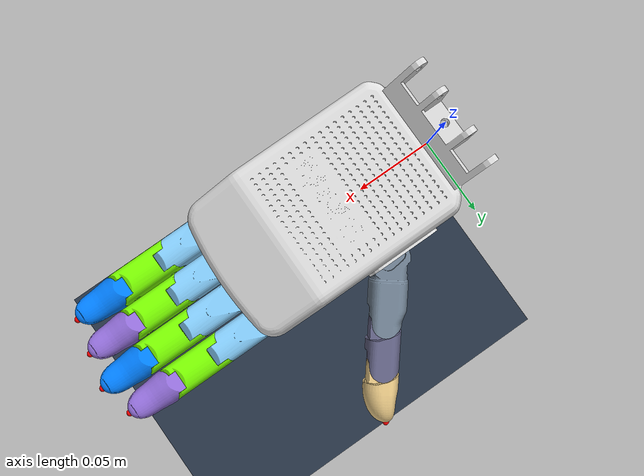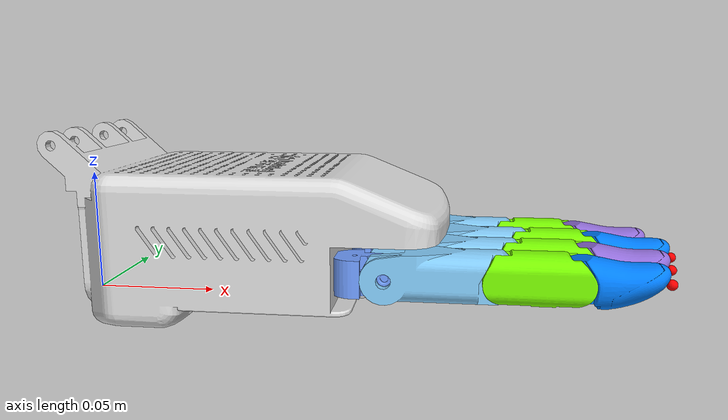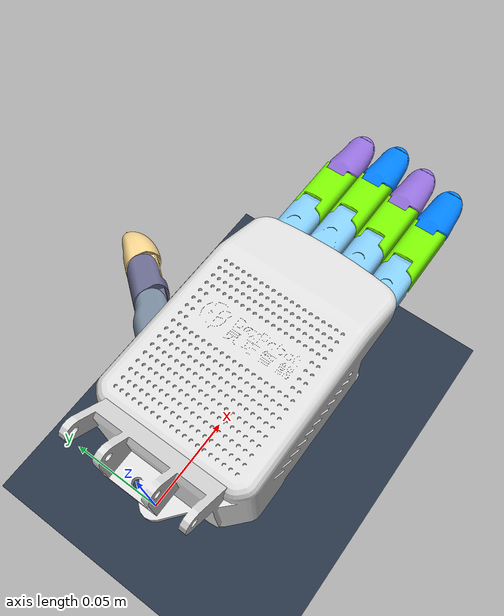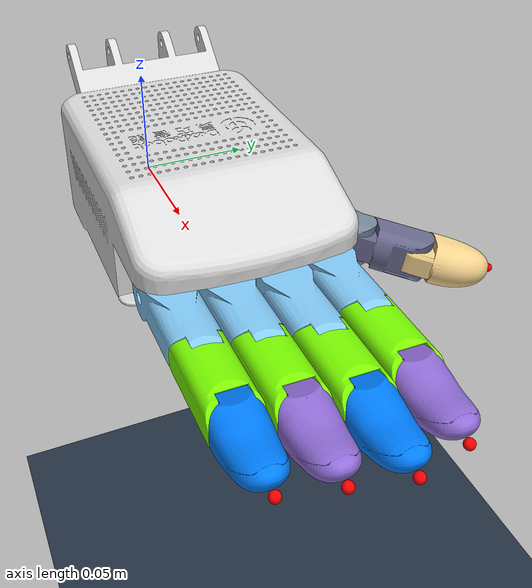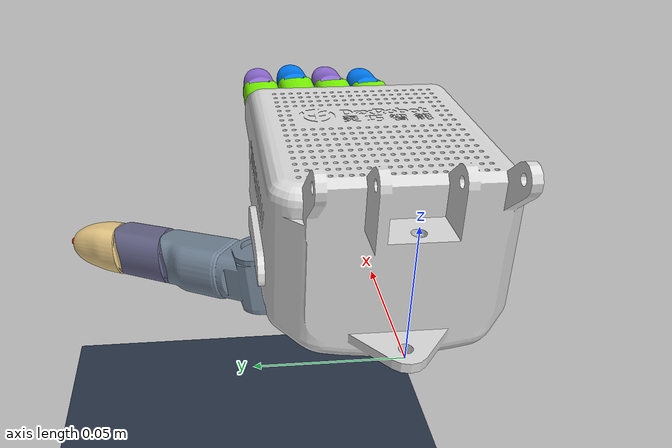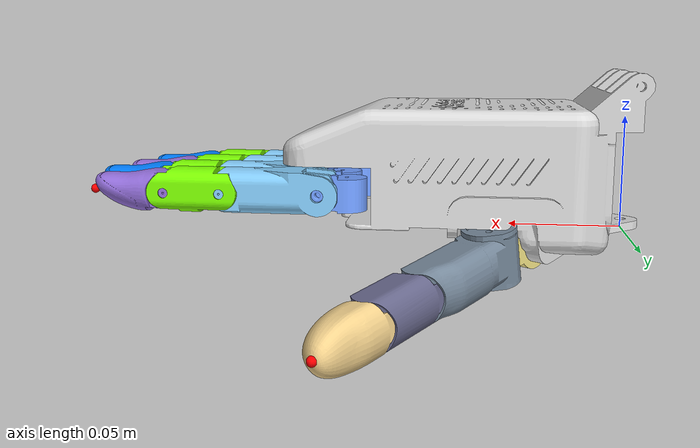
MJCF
<mujoco model="marvin_021pro_right_hand_floating_vis">
  <include file="marvin_021pro_right_hand_floating_simplified.xml"/>

  <statistic center="0 0 0.08" extent="0.6"/>

  <visual>
    <headlight diffuse="0.7 0.7 0.7" ambient="0.35 0.35 0.35" specular="0.15 0.15 0.15"/>
    <global azimuth="140" elevation="-22"/>
    <rgba haze="0.15 0.2 0.28 1"/>
  </visual>

  <asset>
    <texture name="grid" type="2d" builtin="checker" rgb1="0.18 0.24 0.32" rgb2="0.12 0.16 0.22" width="512" height="512"/>
    <material name="grid_mat" texture="grid" texrepeat="8 8" reflectance="0.15" rgba="1 1 1 1"/>
  </asset>

  <worldbody>
    <light name="key_light" pos="1.2 -1.2 1.6" dir="-0.5 0.5 -1" directional="true" diffuse="0.9 0.9 0.9" specular="0.2 0.2 0.2"/>
    <light name="fill_light" pos="-1.0 1.0 1.1" dir="0.4 -0.4 -1" directional="true" diffuse="0.35 0.35 0.4" specular="0.05 0.05 0.05"/>
    <geom name="floor" type="plane" size="2 2 0.1" pos="0 0 -0.22" material="grid_mat" condim="3"/>

    <camera name="overview" pos="0.42 -0.42 0.26" xyaxes="0.707 0.707 0 -0.331 0.331 0.883"/>
    <camera name="side" pos="0.04 -0.62 0.12" xyaxes="1 0 0 0 0.3 0.954"/>
    <camera name="top" pos="0 0 0.72" xyaxes="1 0 0 0 1 0"/>
  </worldbody>

  <keyframe>
    <key
      name="home"
      qpos="0 0 0 0 0 0 0 0 0 0 0 0 0 0 0 0 0 0 0 0 0 0 0 0 0 0"/>
  </keyframe>
</mujoco>

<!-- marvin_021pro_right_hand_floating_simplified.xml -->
<mujoco model="marvin_021pro_right_hand_floating">
  <size njmax="300" nconmax="300" />
  <compiler inertiafromgeom="auto" angle="radian" meshdir="../marvin_021pro_urdf/meshes/" autolimits="true" balanceinertia="true" />
  <option gravity="0 0 -9.81" iterations="100" solver="Newton" integrator="implicit" timestep="0.001" />
  <default>
    <geom friction="3 2 2" solref="0.01 0.9" solimp="0.9 0.999 0.005" />
  </default>
  <visual>
    <headlight diffuse="0.5 0.5 0.5" ambient="0.3 0.3 0.3" specular="0.1 0.1 0.1" />
  </visual>
  <asset>
    <mesh name="RFH1" file="RFH1.STL" />
    <mesh name="RH0_0" file="RH0_0.STL" />
    <mesh name="RH0_1" file="RH0_1.STL" />
    <mesh name="RH0_2" file="RH0_2.STL" />
    <mesh name="RH0_3" file="RH0_3.STL" />
    <mesh name="RH1_0" file="RH1_0.STL" />
    <mesh name="RH1_1" file="RH1_1.STL" />
    <mesh name="RH1_2" file="RH1_2.STL" />
    <mesh name="RH1_3" file="RH1_3.STL" />
    <mesh name="RH2_0" file="RH2_0.STL" />
    <mesh name="RH2_1" file="RH2_1.STL" />
    <mesh name="RH2_2" file="RH2_2.STL" />
    <mesh name="RH2_3" file="RH2_3.STL" />
    <mesh name="RH3_0" file="RH3_0.STL" />
    <mesh name="RH3_1" file="RH3_1.STL" />
    <mesh name="RH3_2" file="RH3_2.STL" />
    <mesh name="RH3_3" file="RH3_3.STL" />
    <mesh name="RH4_0" file="RH4_0.STL" />
    <mesh name="RH4_1" file="RH4_1.STL" />
    <mesh name="RH4_2" file="RH4_2.STL" />
    <mesh name="RH4_3" file="RH4_3.STL" />
    <mesh name="RFH1_collision" file="../meshes_simplified/RFH1.STL" />
    <mesh name="RH0_0_collision" file="../meshes_simplified/RH0_0.STL" />
    <mesh name="RH0_1_collision" file="../meshes_simplified/RH0_1.STL" />
    <mesh name="RH0_2_collision" file="../meshes_simplified/RH0_2.STL" />
    <mesh name="RH0_3_collision" file="../meshes_simplified/RH0_3.STL" />
    <mesh name="RH1_0_collision" file="../meshes_simplified/RH1_0.STL" />
    <mesh name="RH1_1_collision" file="../meshes_simplified/RH1_1.STL" />
    <mesh name="RH1_2_collision" file="../meshes_simplified/RH1_2.STL" />
    <mesh name="RH1_3_collision" file="../meshes_simplified/RH1_3.STL" />
    <mesh name="RH2_0_collision" file="../meshes_simplified/RH2_0.STL" />
    <mesh name="RH2_1_collision" file="../meshes_simplified/RH2_1.STL" />
    <mesh name="RH2_2_collision" file="../meshes_simplified/RH2_2.STL" />
    <mesh name="RH2_3_collision" file="../meshes_simplified/RH2_3.STL" />
    <mesh name="RH3_0_collision" file="../meshes_simplified/RH3_0.STL" />
    <mesh name="RH3_1_collision" file="../meshes_simplified/RH3_1.STL" />
    <mesh name="RH3_2_collision" file="../meshes_simplified/RH3_2.STL" />
    <mesh name="RH3_3_collision" file="../meshes_simplified/RH3_3.STL" />
    <mesh name="RH4_0_collision" file="../meshes_simplified/RH4_0.STL" />
    <mesh name="RH4_1_collision" file="../meshes_simplified/RH4_1.STL" />
    <mesh name="RH4_2_collision" file="../meshes_simplified/RH4_2.STL" />
    <mesh name="RH4_3_collision" file="../meshes_simplified/RH4_3.STL" />
  </asset>
  <worldbody>
    <body name="floating_base_link">
      <inertial pos="0 0 0" mass="0.01" fullinertia="0.01 0.01 0.01 0 0 0" />
      <body name="floating_stage_1" pos="0 0 0">
        <inertial pos="0 0 0" mass="0.001" fullinertia="0.001 0.001 0.001 0 0 0" />
        <joint name="ARTx" type="slide" axis="1 0 0" limited="true" range="-1.0 1.0" damping="20" armature="0.01" frictionloss="0.1" />
        <body name="floating_stage_2" pos="0 0 0">
          <inertial pos="0 0 0" mass="0.001" fullinertia="0.001 0.001 0.001 0 0 0" />
          <joint name="ARTy" type="slide" axis="0 1 0" limited="true" range="-1.0 1.0" damping="20" armature="0.01" frictionloss="0.1" />
          <body name="floating_stage_3" pos="0 0 0">
            <inertial pos="0 0 0" mass="0.001" fullinertia="0.001 0.001 0.001 0 0 0" />
            <joint name="ARTz" type="slide" axis="0 0 1" limited="true" range="-1.0 1.0" damping="20" armature="0.01" frictionloss="0.1" />
            <body name="floating_stage_4" pos="0 0 0">
              <inertial pos="0 0 0" mass="0.001" fullinertia="0.001 0.001 0.001 0 0 0" />
              <joint name="ARRx" type="hinge" axis="1 0 0" limited="true" range="-6.283185307179586 6.283185307179586" damping="20" armature="0.01" frictionloss="0.1" />
              <body name="floating_stage_5" pos="0 0 0">
                <inertial pos="0 0 0" mass="0.001" fullinertia="0.001 0.001 0.001 0 0 0" />
                <joint name="ARRy" type="hinge" axis="0 1 0" limited="true" range="-6.283185307179586 6.283185307179586" damping="20" armature="0.01" frictionloss="0.1" />
                <body name="right_hand_base" pos="0 0 0">
                  <joint name="ARRz" type="hinge" axis="0 0 1" limited="true" range="-6.283185307179586 6.283185307179586" damping="20" armature="0.01" frictionloss="0.1" />
                  <body name="RFH1" pos="0 0 0" quat="0.7071067811865476 0.0 0.7071067811865475 0.0">
                    <inertial pos="-0.0281358 0.00116684 0.0629761" quat="0.997889 0.000664538 -0.0648663 -0.00322019" mass="0.552446" diaginertia="0.000987241 0.000800455 0.000447942" />
                    <geom type="mesh" density="0" rgba="0.858824 0.858824 0.858824 1" mesh="RFH1_collision" contype="1" conaffinity="1" group="3" />
                    <geom type="mesh" rgba="0.858824 0.858824 0.858824 1" mesh="RFH1" contype="0" conaffinity="0" group="1" density="0" />
                    <body name="RH0_0" pos="0.001 0.0173446 0.0609471" quat="0.669581 0.227292 0.669581 0.227292">
                      <inertial pos="0.0166 0.00521328 0.000919242" quat="0.454519 0.541675 -0.541675 0.454519" mass="0.0505243" diaginertia="1.30842e-06 1.2533e-06 5.88299e-07" />
                      <joint name="r_f_jiont_1_1" pos="0 0 0" axis="1 0 0" range="0 2" type="hinge" limited="true" damping="1" />
                      <geom type="mesh" density="0" rgba="0.929412 0.866667 0.509804 1" mesh="RH0_0_collision" contype="1" conaffinity="1" group="3" />
                      <geom type="mesh" rgba="0.929412 0.866667 0.509804 1" mesh="RH0_0" contype="0" conaffinity="0" group="1" density="0" />
                      <body name="RH0_1" pos="0.0166 0.0160248 0.0127768" quat="0.646164 0.28718 0.686215 -0.170612">
                        <inertial pos="0.00979983 0.0148825 -0.0104531" quat="0.894642 0.446781 -0.000693364 0.00140788" mass="0.0246804" diaginertia="7.69892e-06 7.69009e-06 1.75846e-06" />
                        <joint name="r_f_jiont_1_2" pos="0 0 0" axis="-1 0 0" range="0 1.57" type="hinge" limited="true" damping="1" />
                        <geom type="mesh" density="0" rgba="0.458824 0.529412 0.6 1" mesh="RH0_1_collision" contype="1" conaffinity="1" group="3" />
                        <geom type="mesh" rgba="0.458824 0.529412 0.6 1" mesh="RH0_1" contype="0" conaffinity="0" group="1" density="0" />
                        <body name="RH0_2" pos="0.0038 0.0339193 -0.0264287">
                          <inertial pos="0.00600001 0.011904 -0.00882206" quat="0.634542 0.312107 -0.312073 0.634473" mass="0.0122868" diaginertia="1.81253e-06 1.78096e-06 6.66259e-07" />
                          <joint name="r_f_jiont_1_3" pos="0 0 0" axis="-1 0 0" range="0 1.57" type="hinge" limited="true" damping="1" />
                          <geom type="mesh" density="0" rgba="0.407843 0.407843 0.54902 1" mesh="RH0_2_collision" contype="1" conaffinity="1" group="3" />
                          <geom type="mesh" rgba="0.407843 0.407843 0.54902 1" mesh="RH0_2" contype="0" conaffinity="0" group="1" density="0" />
                          <body name="RH0_3" pos="0 0.021456 -0.0167177" quat="0 0 -1 0">
                            <inertial pos="-0.00601695 0.0109867 0.00765051" quat="0.463072 0.886283 0.00763868 -0.00293413" mass="0.0110115" diaginertia="1.47866e-06 1.44967e-06 5.32426e-07" />
                            <joint name="r_f_jiont_1_4" pos="0 0 0" axis="1 0 0" range="0 1.57" type="hinge" limited="true" damping="1" />
                            <geom type="mesh" density="0" rgba="0.94902 0.819608 0.54902 1" mesh="RH0_3_collision" contype="1" conaffinity="1" group="3" />
                            <geom type="mesh" rgba="0.94902 0.819608 0.54902 1" mesh="RH0_3" contype="0" conaffinity="0" group="1" density="0" />
                            <body name="RH0_tip_visual" pos="-0.007274 0.030211 0.017690">
                              <geom name="geom_RH0_tip_visual" type="sphere" size="0.002" rgba="1 0 0 1" contype="0" conaffinity="0" group="1" density="0" />
                            </body>
                          </body>
                        </body>
                      </body>
                    </body>
                    <body name="RH1_0" pos="-0.0108 0.03045 0.12078">
                      <inertial pos="-0.00723484 6.56576e-05 0.00156068" quat="0.999764 -0.019262 -0.00624849 -0.0078302" mass="0.00384132" diaginertia="1.98177e-07 1.9479e-07 1.29158e-07" />
                      <joint name="r_f_jiont_2_1" pos="0 0 0" axis="-1 0 0" range="-0.1570796327 0.4537856055" type="hinge" limited="true" damping="1" />
                      <geom type="mesh" density="0" rgba="0.439216 0.619608 1 1" mesh="RH1_0_collision" contype="1" conaffinity="1" group="3" />
                      <geom type="mesh" rgba="0.439216 0.619608 1 1" mesh="RH1_0" contype="0" conaffinity="0" group="1" density="0" />
                      <body name="RH1_1" pos="-0.00715 0.0078 0.0116" quat="0.502146 -0.497845 -0.497845 0.502146">
                        <inertial pos="-0.00757951 -0.0216788 0.000842089" quat="0.516099 0.523162 -0.470182 0.488746" mass="0.0143435" diaginertia="3.19377e-06 3.16294e-06 7.96529e-07" />
                        <joint name="r_f_jiont_2_2" pos="0 0 0" axis="1 0 0" range="0 1.57" type="hinge" limited="true" damping="1" />
                        <geom type="mesh" density="0" rgba="0.517647 0.8 0.976471 1" mesh="RH1_1_collision" contype="1" conaffinity="1" group="3" />
                        <geom type="mesh" rgba="0.517647 0.8 0.976471 1" mesh="RH1_1" contype="0" conaffinity="0" group="1" density="0" />
                        <body name="RH1_2" pos="0.0015 -0.0429984 0.000369901" quat="0 0 1 0">
                          <inertial pos="0.0102511 -0.0127506 -0.00136023" quat="0.487649 0.471262 -0.521177 0.518156" mass="0.00665208" diaginertia="7.87406e-07 6.98143e-07 4.28426e-07" />
                          <joint name="r_f_jiont_2_3" pos="0 0 0" axis="-1 0 0" range="0 1.57" type="hinge" limited="true" damping="1" />
                          <geom type="mesh" density="0" rgba="0.486275 1 0 1" mesh="RH1_2_collision" contype="1" conaffinity="1" group="3" />
                          <geom type="mesh" rgba="0.486275 1 0 1" mesh="RH1_2" contype="0" conaffinity="0" group="1" density="0" />
                          <body name="RH1_3" pos="0 -0.0249991 -0.000215058">
                            <inertial pos="0.00894424 -0.0126893 -0.00048063" quat="0.405687 0.555859 -0.555566 0.466675" mass="0.00790882" diaginertia="6.43887e-07 6.00668e-07 2.4799e-07" />
                            <joint name="r_f_jiont_2_4" pos="0 0 0" axis="-1 0 0" range="0 1.57" type="hinge" limited="true" damping="1" />
                            <geom type="mesh" density="0" rgba="0.568627 0.427451 0.847059 1" mesh="RH1_3_collision" contype="1" conaffinity="1" group="3" />
                            <geom type="mesh" rgba="0.568627 0.427451 0.847059 1" mesh="RH1_3" contype="0" conaffinity="0" group="1" density="0" />
                            <body name="RH1_tip_visual" pos="0.009299 -0.034800 -0.000148">
                              <geom name="geom_RH1_tip_visual" type="sphere" size="0.002" rgba="1 0 0 1" contype="0" conaffinity="0" group="1" density="0" />
                            </body>
                          </body>
                        </body>
                      </body>
                    </body>
                    <body name="RH2_0" pos="-0.0105 0.01015 0.12578">
                      <inertial pos="-0.00753484 6.56576e-05 0.00156068" quat="0.999764 -0.019262 -0.00624849 -0.0078302" mass="0.00384132" diaginertia="1.98177e-07 1.9479e-07 1.29158e-07" />
                      <joint name="r_f_jiont_3_1" pos="0 0 0" axis="-1 0 0" range="-0.4537856055 0.4537856055" type="hinge" limited="true" damping="1" />
                      <geom type="mesh" density="0" rgba="0.439216 0.619608 1 1" mesh="RH2_0_collision" contype="1" conaffinity="1" group="3" />
                      <geom type="mesh" rgba="0.439216 0.619608 1 1" mesh="RH2_0" contype="0" conaffinity="0" group="1" density="0" />
                      <body name="RH2_1" pos="-0.00745 0.0081 0.0116" quat="0.502146 -0.497845 -0.497845 0.502146">
                        <inertial pos="-0.00787951 -0.0216788 0.000842089" quat="0.516099 0.523162 -0.470182 0.488746" mass="0.0143435" diaginertia="3.19377e-06 3.16294e-06 7.96529e-07" />
                        <joint name="r_f_jiont_3_2" pos="0 0 0" axis="1 0 0" range="0 1.57" type="hinge" limited="true" damping="1" />
                        <geom type="mesh" density="0" rgba="0.517647 0.8 0.976471 1" mesh="RH2_1_collision" contype="1" conaffinity="1" group="3" />
                        <geom type="mesh" rgba="0.517647 0.8 0.976471 1" mesh="RH2_1" contype="0" conaffinity="0" group="1" density="0" />
                        <body name="RH2_2" pos="0.0012 -0.0429984 0.000369901" quat="0 0 1 0">
                          <inertial pos="0.0102511 -0.0127506 -0.00136023" quat="0.487649 0.471262 -0.521177 0.518156" mass="0.00665208" diaginertia="7.87406e-07 6.98143e-07 4.28426e-07" />
                          <joint name="r_f_jiont_3_3" pos="0 0 0" axis="-1 0 0" range="0 1.57" type="hinge" limited="true" damping="1" />
                          <geom type="mesh" density="0" rgba="0.486275 1 0 1" mesh="RH2_2_collision" contype="1" conaffinity="1" group="3" />
                          <geom type="mesh" rgba="0.486275 1 0 1" mesh="RH2_2" contype="0" conaffinity="0" group="1" density="0" />
                          <body name="RH2_3" pos="0 -0.0249991 -0.000215058">
                            <inertial pos="0.00894424 -0.0126893 -0.00048063" quat="0.405687 0.555859 -0.555566 0.466675" mass="0.00790882" diaginertia="6.43887e-07 6.00668e-07 2.4799e-07" />
                            <joint name="r_f_jiont_3_4" pos="0 0 0" axis="-1 0 0" range="0 1.57" type="hinge" limited="true" damping="1" />
                            <geom type="mesh" density="0" rgba="0 0.498039 1 1" mesh="RH2_3_collision" contype="1" conaffinity="1" group="3" />
                            <geom type="mesh" rgba="0 0.498039 1 1" mesh="RH2_3" contype="0" conaffinity="0" group="1" density="0" />
                            <body name="RH2_tip_visual" pos="0.009299 -0.034800 -0.000148">
                              <geom name="geom_RH2_tip_visual" type="sphere" size="0.002" rgba="1 0 0 1" contype="0" conaffinity="0" group="1" density="0" />
                            </body>
                          </body>
                        </body>
                      </body>
                    </body>
                    <body name="RH3_0" pos="-0.0108 -0.01015 0.12078">
                      <inertial pos="-0.00723484 6.56576e-05 0.00156068" quat="0.999764 -0.019262 -0.00624849 -0.0078302" mass="0.00384132" diaginertia="1.98177e-07 1.9479e-07 1.29158e-07" />
                      <joint name="r_f_jiont_4_1" pos="0 0 0" axis="-1 0 0" range="-0.4537856055 0.1570796327" type="hinge" limited="true" damping="1" />
                      <geom type="mesh" density="0" rgba="0.439216 0.619608 1 1" mesh="RH3_0_collision" contype="1" conaffinity="1" group="3" />
                      <geom type="mesh" rgba="0.439216 0.619608 1 1" mesh="RH3_0" contype="0" conaffinity="0" group="1" density="0" />
                      <body name="RH3_1" pos="-0.00715 -0.00965 0.0116" quat="0.497845 -0.502146 0.502146 -0.497845">
                        <inertial pos="-0.00987049 -0.0216788 -0.000842089" quat="0.523162 0.516099 -0.488746 0.470182" mass="0.0143435" diaginertia="3.19377e-06 3.16294e-06 7.96529e-07" />
                        <joint name="r_f_jiont_4_2" pos="0 0 0" axis="-1 0 0" range="0 1.57" type="hinge" limited="true" damping="1" />
                        <geom type="mesh" density="0" rgba="0.517647 0.8 0.976471 1" mesh="RH3_1_collision" contype="1" conaffinity="1" group="3" />
                        <geom type="mesh" rgba="0.517647 0.8 0.976471 1" mesh="RH3_1" contype="0" conaffinity="0" group="1" density="0" />
                        <body name="RH3_2" pos="-0.00325 -0.0429984 -0.000369901">
                          <inertial pos="-0.00544889 -0.0127506 -0.00136023" quat="0.487649 0.471262 -0.521177 0.518156" mass="0.00665208" diaginertia="7.87406e-07 6.98143e-07 4.28426e-07" />
                          <joint name="r_f_jiont_4_3" pos="0 0 0" axis="-1 0 0" range="0 1.57" type="hinge" limited="true" damping="1" />
                          <geom type="mesh" density="0" rgba="0.486275 1 0 1" mesh="RH3_2_collision" contype="1" conaffinity="1" group="3" />
                          <geom type="mesh" rgba="0.486275 1 0 1" mesh="RH3_2" contype="0" conaffinity="0" group="1" density="0" />
                          <body name="RH3_3" pos="0 -0.0249991 -0.000215058">
                            <inertial pos="-0.00675576 -0.0126893 -0.00048063" quat="0.405687 0.555859 -0.555566 0.466675" mass="0.00790882" diaginertia="6.43887e-07 6.00668e-07 2.4799e-07" />
                            <joint name="r_f_jiont_4_4" pos="0 0 0" axis="-1 0 0" range="0 1.57" type="hinge" limited="true" damping="1" />
                            <geom type="mesh" density="0" rgba="0.568627 0.427451 0.847059 1" mesh="RH3_3_collision" contype="1" conaffinity="1" group="3" />
                            <geom type="mesh" rgba="0.568627 0.427451 0.847059 1" mesh="RH3_3" contype="0" conaffinity="0" group="1" density="0" />
                            <body name="RH3_tip_visual" pos="-0.006401 -0.034800 -0.000148">
                              <geom name="geom_RH3_tip_visual" type="sphere" size="0.002" rgba="1 0 0 1" contype="0" conaffinity="0" group="1" density="0" />
                            </body>
                          </body>
                        </body>
                      </body>
                    </body>
                    <body name="RH4_0" pos="-0.0105 -0.03045 0.11578">
                      <inertial pos="-0.00753484 6.56576e-05 0.00156068" quat="0.999764 -0.019262 -0.00624849 -0.0078302" mass="0.00384132" diaginertia="1.98177e-07 1.9479e-07 1.29158e-07" />
                      <joint name="r_f_jiont_5_1" pos="0 0 0" axis="-1 0 0" range="-0.4537856055 0.0872664626" type="hinge" limited="true" damping="1" />
                      <geom type="mesh" density="0" rgba="0.439216 0.619608 1 1" mesh="RH4_0_collision" contype="1" conaffinity="1" group="3" />
                      <geom type="mesh" rgba="0.439216 0.619608 1 1" mesh="RH4_0" contype="0" conaffinity="0" group="1" density="0" />
                      <body name="RH4_1" pos="-0.00745 -0.00965 0.0116" quat="0.497845 -0.502146 0.502146 -0.497845">
                        <inertial pos="-0.00987049 -0.0216788 -0.000842089" quat="0.523162 0.516099 -0.488746 0.470182" mass="0.0143435" diaginertia="3.19377e-06 3.16294e-06 7.96529e-07" />
                        <joint name="r_f_jiont_5_2" pos="0 0 0" axis="-1 0 0" range="0 1.57" type="hinge" limited="true" damping="1" />
                        <geom type="mesh" density="0" rgba="0.517647 0.8 0.976471 1" mesh="RH4_1_collision" contype="1" conaffinity="1" group="3" />
                        <geom type="mesh" rgba="0.517647 0.8 0.976471 1" mesh="RH4_1" contype="0" conaffinity="0" group="1" density="0" />
                        <body name="RH4_2" pos="-0.00325 -0.0429984 -0.000369901">
                          <inertial pos="-0.00544889 -0.0127506 -0.00136023" quat="0.487649 0.471262 -0.521177 0.518156" mass="0.00665208" diaginertia="7.87406e-07 6.98143e-07 4.28426e-07" />
                          <joint name="r_f_jiont_5_3" pos="0 0 0" axis="-1 0 0" range="0 1.57" type="hinge" limited="true" damping="1" />
                          <geom type="mesh" density="0" rgba="0.486275 1 0 1" mesh="RH4_2_collision" contype="1" conaffinity="1" group="3" />
                          <geom type="mesh" rgba="0.486275 1 0 1" mesh="RH4_2" contype="0" conaffinity="0" group="1" density="0" />
                          <body name="RH4_3" pos="0 -0.0249991 -0.000215058">
                            <inertial pos="-0.00675576 -0.0126893 -0.00048063" quat="0.405687 0.555859 -0.555566 0.466675" mass="0.00790882" diaginertia="6.43887e-07 6.00668e-07 2.4799e-07" />
                            <joint name="r_f_jiont_5_4" pos="0 0 0" axis="-1 0 0" range="0 1.57" type="hinge" limited="true" damping="1" />
                            <geom type="mesh" density="0" rgba="0 0.498039 1 1" mesh="RH4_3_collision" contype="1" conaffinity="1" group="3" />
                            <geom type="mesh" rgba="0 0.498039 1 1" mesh="RH4_3" contype="0" conaffinity="0" group="1" density="0" />
                            <body name="RH4_tip_visual" pos="-0.006401 -0.034800 -0.000148">
                              <geom name="geom_RH4_tip_visual" type="sphere" size="0.002" rgba="1 0 0 1" contype="0" conaffinity="0" group="1" density="0" />
                            </body>
                          </body>
                        </body>
                      </body>
                    </body>
                  </body>
                </body>
              </body>
            </body>
          </body>
        </body>
      </body>
    </body>
  </worldbody>
  <actuator>
    <position name="act_ARTx" joint="ARTx" kp="10000" kv="500" ctrllimited="true" ctrlrange="-1.0 1.0" forcelimited="true" forcerange="-500 500" />
    <position name="act_ARTy" joint="ARTy" kp="10000" kv="500" ctrllimited="true" ctrlrange="-1.0 1.0" forcelimited="true" forcerange="-500 500" />
    <position name="act_ARTz" joint="ARTz" kp="10000" kv="500" ctrllimited="true" ctrlrange="-1.0 1.0" forcelimited="true" forcerange="-500 500" />
    <position name="act_ARRx" joint="ARRx" kp="10000" kv="500" ctrllimited="true" ctrlrange="-6.283185307179586 6.283185307179586" forcelimited="true" forcerange="-100 100" />
    <position name="act_ARRy" joint="ARRy" kp="10000" kv="500" ctrllimited="true" ctrlrange="-6.283185307179586 6.283185307179586" forcelimited="true" forcerange="-100 100" />
    <position name="act_ARRz" joint="ARRz" kp="10000" kv="500" ctrllimited="true" ctrlrange="-6.283185307179586 6.283185307179586" forcelimited="true" forcerange="-100 100" />
    <position name="act_r_f_jiont_1_1" joint="r_f_jiont_1_1" kp="30" ctrllimited="true" ctrlrange="0 2" />
    <position name="act_r_f_jiont_1_2" joint="r_f_jiont_1_2" kp="30" ctrllimited="true" ctrlrange="0 1.57" />
    <position name="act_r_f_jiont_1_3" joint="r_f_jiont_1_3" kp="20" ctrllimited="true" ctrlrange="0 1.57" />
    <position name="act_r_f_jiont_1_4" joint="r_f_jiont_1_4" kp="20" ctrllimited="true" ctrlrange="0 1.57" />
    <position name="act_r_f_jiont_2_1" joint="r_f_jiont_2_1" kp="30" ctrllimited="true" ctrlrange="-0.1570796327 0.4537856055" />
    <position name="act_r_f_jiont_2_2" joint="r_f_jiont_2_2" kp="30" ctrllimited="true" ctrlrange="0 1.57" />
    <position name="act_r_f_jiont_2_3" joint="r_f_jiont_2_3" kp="20" ctrllimited="true" ctrlrange="0 1.57" />
    <position name="act_r_f_jiont_2_4" joint="r_f_jiont_2_4" kp="20" ctrllimited="true" ctrlrange="0 1.57" />
    <position name="act_r_f_jiont_3_1" joint="r_f_jiont_3_1" kp="30" ctrllimited="true" ctrlrange="-0.4537856055 0.4537856055" />
    <position name="act_r_f_jiont_3_2" joint="r_f_jiont_3_2" kp="30" ctrllimited="true" ctrlrange="0 1.57" />
    <position name="act_r_f_jiont_3_3" joint="r_f_jiont_3_3" kp="20" ctrllimited="true" ctrlrange="0 1.57" />
    <position name="act_r_f_jiont_3_4" joint="r_f_jiont_3_4" kp="20" ctrllimited="true" ctrlrange="0 1.57" />
    <position name="act_r_f_jiont_4_1" joint="r_f_jiont_4_1" kp="30" ctrllimited="true" ctrlrange="-0.4537856055 0.1570796327" />
    <position name="act_r_f_jiont_4_2" joint="r_f_jiont_4_2" kp="30" ctrllimited="true" ctrlrange="0 1.57" />
    <position name="act_r_f_jiont_4_3" joint="r_f_jiont_4_3" kp="20" ctrllimited="true" ctrlrange="0 1.57" />
    <position name="act_r_f_jiont_4_4" joint="r_f_jiont_4_4" kp="20" ctrllimited="true" ctrlrange="0 1.57" />
    <position name="act_r_f_jiont_5_1" joint="r_f_jiont_5_1" kp="30" ctrllimited="true" ctrlrange="-0.4537856055 0.0872664626" />
    <position name="act_r_f_jiont_5_2" joint="r_f_jiont_5_2" kp="30" ctrllimited="true" ctrlrange="0 1.57" />
    <position name="act_r_f_jiont_5_3" joint="r_f_jiont_5_3" kp="20" ctrllimited="true" ctrlrange="0 1.57" />
    <position name="act_r_f_jiont_5_4" joint="r_f_jiont_5_4" kp="20" ctrllimited="true" ctrlrange="0 1.57" />
  </actuator>
</mujoco>
